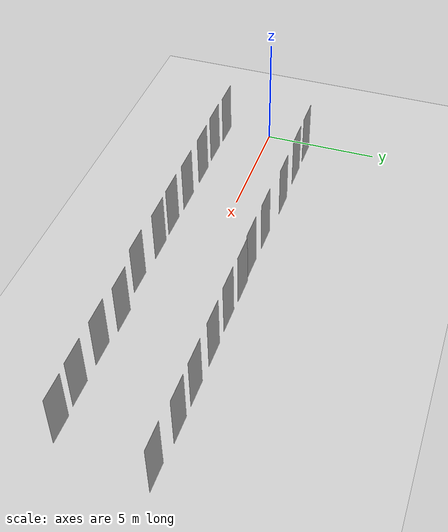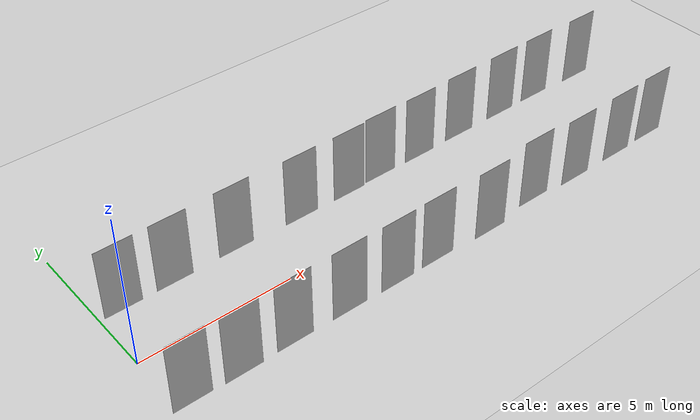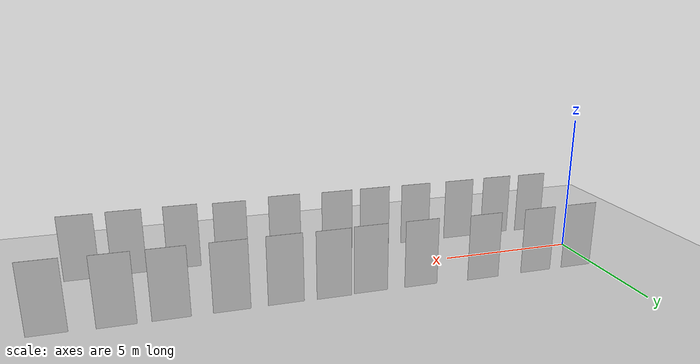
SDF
<sdf version="1.6">
 <world name="default">
  <light name="sun" type="directional">
   <pose>0 0 10 0 -0 0</pose>
   <diffuse>0.8 0.8 0.8 1</diffuse>
   <specular>0.1 0.1 0.1 1</specular>
   <attenuation>
    <range>1000</range>
    <constant>0.9</constant>
    <linear>0.01</linear>
    <quadratic>0.001</quadratic>
   </attenuation>
   <direction>-0.5 0.5 -1</direction>
  </light>
  <model name="ground_plane">
   <static>1</static>
   <link name="link">
    <collision name="collision">
     <geometry><plane><normal>0 0 1</normal><size>100 100</size></plane></geometry>
     <surface><friction><ode><mu>100</mu><mu2>50</mu2></ode></friction></surface>
    </collision>
    <visual name="visual">
     <cast_shadows>0</cast_shadows>
     <geometry><plane><normal>0 0 1</normal><size>100 100</size></plane></geometry>
     <material>
      <script><uri>file://media/materials/scripts/gazebo.material</uri><name>Gazebo/Grey</name></script>
     </material>
    </visual>
   </link>
  </model>
  <gravity>0 0 -9.8</gravity>
  <magnetic_field>6e-06 2.3e-05 -4.2e-05</magnetic_field>
  <atmosphere type="adiabatic"/>
  <physics name="default_physics" default="0" type="ode">
   <max_step_size>0.001</max_step_size>
   <real_time_factor>1</real_time_factor>
   <real_time_update_rate>1000</real_time_update_rate>
  </physics>
  <scene><ambient>0.4 0.4 0.4 1</ambient><background>0.7 0.7 0.7 1</background><shadows>1</shadows></scene>
  <spherical_coordinates>
   <surface_model>EARTH_WGS84</surface_model>
   <latitude_deg>0</latitude_deg>
   <longitude_deg>0</longitude_deg>
   <elevation>0</elevation>
   <heading_deg>0</heading_deg>
  </spherical_coordinates>
  <model name="nist_maze_wall_240">
   <static>1</static>
   <link name="nist__maze_wall_240_link">
    <collision name="collision">
     <geometry>
      <mesh><uri>model://nist_maze_wall_240/meshes/nist_maze_wall_240.dae</uri><scale>1 1 1</scale></mesh>
     </geometry>
    </collision>
    <visual name="visual">
     <geometry>
      <mesh><uri>model://nist_maze_wall_240/meshes/nist_maze_wall_240.dae</uri><scale>1 1 1</scale></mesh>
     </geometry>
    </visual>
   </link>
   <pose>0.434787 -2.60305 0 0 -0 0</pose>
  </model>
  <model name="nist_maze_wall_240_clone">
   <static>1</static>
   <link name="nist__maze_wall_240_link">
    <collision name="collision">
     <geometry>
      <mesh><uri>model://nist_maze_wall_240/meshes/nist_maze_wall_240.dae</uri><scale>1 1 1</scale></mesh>
     </geometry>
    </collision>
    <visual name="visual">
     <geometry>
      <mesh><uri>model://nist_maze_wall_240/meshes/nist_maze_wall_240.dae</uri><scale>1 1 1</scale></mesh>
     </geometry>
    </visual>
   </link>
   <pose>1.99641 -2.64184 0 0 -0 0</pose>
  </model>
  <model name="nist_maze_wall_240_clone_0">
   <static>1</static>
   <link name="nist__maze_wall_240_link">
    <collision name="collision">
     <geometry>
      <mesh><uri>model://nist_maze_wall_240/meshes/nist_maze_wall_240.dae</uri><scale>1 1 1</scale></mesh>
     </geometry>
    </collision>
    <visual name="visual">
     <geometry>
      <mesh><uri>model://nist_maze_wall_240/meshes/nist_maze_wall_240.dae</uri><scale>1 1 1</scale></mesh>
     </geometry>
    </visual>
   </link>
   <pose>3.67232 -2.61551 0 0 -0 0</pose>
  </model>
  <model name="nist_maze_wall_240_clone_1">
   <static>1</static>
   <link name="nist__maze_wall_240_link">
    <collision name="collision">
     <geometry>
      <mesh><uri>model://nist_maze_wall_240/meshes/nist_maze_wall_240.dae</uri><scale>1 1 1</scale></mesh>
     </geometry>
    </collision>
    <visual name="visual">
     <geometry>
      <mesh><uri>model://nist_maze_wall_240/meshes/nist_maze_wall_240.dae</uri><scale>1 1 1</scale></mesh>
     </geometry>
    </visual>
   </link>
   <pose>5.53733 -2.63248 0 0 -0 0</pose>
  </model>
  <model name="nist_maze_wall_240_clone_2">
   <static>1</static>
   <link name="nist__maze_wall_240_link">
    <collision name="collision">
     <geometry>
      <mesh><uri>model://nist_maze_wall_240/meshes/nist_maze_wall_240.dae</uri><scale>1 1 1</scale></mesh>
     </geometry>
    </collision>
    <visual name="visual">
     <geometry>
      <mesh><uri>model://nist_maze_wall_240/meshes/nist_maze_wall_240.dae</uri><scale>1 1 1</scale></mesh>
     </geometry>
    </visual>
   </link>
   <pose>7.24044 -2.66176 0 0 -0 0</pose>
  </model>
  <model name="nist_maze_wall_240_clone_3">
   <static>1</static>
   <link name="nist__maze_wall_240_link">
    <collision name="collision">
     <geometry>
      <mesh><uri>model://nist_maze_wall_240/meshes/nist_maze_wall_240.dae</uri><scale>1 1 1</scale></mesh>
     </geometry>
    </collision>
    <visual name="visual">
     <geometry>
      <mesh><uri>model://nist_maze_wall_240/meshes/nist_maze_wall_240.dae</uri><scale>1 1 1</scale></mesh>
     </geometry>
    </visual>
   </link>
   <pose>8.76998 -2.64909 0 0 -0 0</pose>
  </model>
  <model name="nist_maze_wall_240_clone_4">
   <static>1</static>
   <link name="nist__maze_wall_240_link">
    <collision name="collision">
     <geometry>
      <mesh><uri>model://nist_maze_wall_240/meshes/nist_maze_wall_240.dae</uri><scale>1 1 1</scale></mesh>
     </geometry>
    </collision>
    <visual name="visual">
     <geometry>
      <mesh><uri>model://nist_maze_wall_240/meshes/nist_maze_wall_240.dae</uri><scale>1 1 1</scale></mesh>
     </geometry>
    </visual>
   </link>
   <pose>10.7979 -2.72484 0 0 -0 0</pose>
  </model>
  <model name="nist_maze_wall_240_clone_5">
   <static>1</static>
   <link name="nist__maze_wall_240_link">
    <collision name="collision">
     <geometry>
      <mesh><uri>model://nist_maze_wall_240/meshes/nist_maze_wall_240.dae</uri><scale>1 1 1</scale></mesh>
     </geometry>
    </collision>
    <visual name="visual">
     <geometry>
      <mesh><uri>model://nist_maze_wall_240/meshes/nist_maze_wall_240.dae</uri><scale>1 1 1</scale></mesh>
     </geometry>
    </visual>
   </link>
   <pose>12.864 -2.51583 0 0 -0 0</pose>
  </model>
  <model name="nist_maze_wall_240_clone_6">
   <static>1</static>
   <link name="nist__maze_wall_240_link">
    <collision name="collision">
     <geometry>
      <mesh><uri>model://nist_maze_wall_240/meshes/nist_maze_wall_240.dae</uri><scale>1 1 1</scale></mesh>
     </geometry>
    </collision>
    <visual name="visual">
     <geometry>
      <mesh><uri>model://nist_maze_wall_240/meshes/nist_maze_wall_240.dae</uri><scale>1 1 1</scale></mesh>
     </geometry>
    </visual>
   </link>
   <pose>14.6032 -2.63067 0 0 -0 0</pose>
  </model>
  <model name="nist_maze_wall_240_clone_7">
   <static>1</static>
   <link name="nist__maze_wall_240_link">
    <collision name="collision">
     <geometry>
      <mesh><uri>model://nist_maze_wall_240/meshes/nist_maze_wall_240.dae</uri><scale>1 1 1</scale></mesh>
     </geometry>
    </collision>
    <visual name="visual">
     <geometry>
      <mesh><uri>model://nist_maze_wall_240/meshes/nist_maze_wall_240.dae</uri><scale>1 1 1</scale></mesh>
     </geometry>
    </visual>
   </link>
   <pose>16.5364 -2.62728 0 0 -0 0</pose>
  </model>
  <model name="nist_maze_wall_240_clone_8">
   <static>1</static>
   <link name="nist__maze_wall_240_link">
    <collision name="collision">
     <geometry>
      <mesh><uri>model://nist_maze_wall_240/meshes/nist_maze_wall_240.dae</uri><scale>1 1 1</scale></mesh>
     </geometry>
    </collision>
    <visual name="visual">
     <geometry>
      <mesh><uri>model://nist_maze_wall_240/meshes/nist_maze_wall_240.dae</uri><scale>1 1 1</scale></mesh>
     </geometry>
    </visual>
   </link>
   <pose>18.1412 -2.58883 0 0 -0 0</pose>
  </model>
  <model name="nist_maze_wall_240_clone_9">
   <static>1</static>
   <link name="nist__maze_wall_240_link">
    <collision name="collision">
     <geometry>
      <mesh><uri>model://nist_maze_wall_240/meshes/nist_maze_wall_240.dae</uri><scale>1 1 1</scale></mesh>
     </geometry>
    </collision>
    <visual name="visual">
     <geometry>
      <mesh><uri>model://nist_maze_wall_240/meshes/nist_maze_wall_240.dae</uri><scale>1 1 1</scale></mesh>
     </geometry>
    </visual>
   </link>
   <pose>0.765976 1.377 0 0 -0 0</pose>
  </model>
  <model name="nist_maze_wall_240_clone_10">
   <static>1</static>
   <link name="nist__maze_wall_240_link">
    <collision name="collision">
     <geometry>
      <mesh><uri>model://nist_maze_wall_240/meshes/nist_maze_wall_240.dae</uri><scale>1 1 1</scale></mesh>
     </geometry>
    </collision>
    <visual name="visual">
     <geometry>
      <mesh><uri>model://nist_maze_wall_240/meshes/nist_maze_wall_240.dae</uri><scale>1 1 1</scale></mesh>
     </geometry>
    </visual>
   </link>
   <pose>2.43332 1.37696 0 0 -0 0</pose>
  </model>
  <model name="nist_maze_wall_240_clone_11">
   <static>1</static>
   <link name="nist__maze_wall_240_link">
    <collision name="collision">
     <geometry>
      <mesh><uri>model://nist_maze_wall_240/meshes/nist_maze_wall_240.dae</uri><scale>1 1 1</scale></mesh>
     </geometry>
    </collision>
    <visual name="visual">
     <geometry>
      <mesh><uri>model://nist_maze_wall_240/meshes/nist_maze_wall_240.dae</uri><scale>1 1 1</scale></mesh>
     </geometry>
    </visual>
   </link>
   <pose>4.55106 1.40546 0 0 -0 0</pose>
  </model>
  <model name="nist_maze_wall_240_clone_12">
   <static>1</static>
   <link name="nist__maze_wall_240_link">
    <collision name="collision">
     <geometry>
      <mesh><uri>model://nist_maze_wall_240/meshes/nist_maze_wall_240.dae</uri><scale>1 1 1</scale></mesh>
     </geometry>
    </collision>
    <visual name="visual">
     <geometry>
      <mesh><uri>model://nist_maze_wall_240/meshes/nist_maze_wall_240.dae</uri><scale>1 1 1</scale></mesh>
     </geometry>
    </visual>
   </link>
   <pose>6.87791 1.32144 0 0 -0 0</pose>
  </model>
  <model name="nist_maze_wall_240_clone_13">
   <static>1</static>
   <link name="nist__maze_wall_240_link">
    <collision name="collision">
     <geometry>
      <mesh><uri>model://nist_maze_wall_240/meshes/nist_maze_wall_240.dae</uri><scale>1 1 1</scale></mesh>
     </geometry>
    </collision>
    <visual name="visual">
     <geometry>
      <mesh><uri>model://nist_maze_wall_240/meshes/nist_maze_wall_240.dae</uri><scale>1 1 1</scale></mesh>
     </geometry>
    </visual>
   </link>
   <pose>8.69281 1.29542 0 0 -0 0</pose>
  </model>
  <model name="nist_maze_wall_240_clone_14">
   <static>1</static>
   <link name="nist__maze_wall_240_link">
    <collision name="collision">
     <geometry>
      <mesh><uri>model://nist_maze_wall_240/meshes/nist_maze_wall_240.dae</uri><scale>1 1 1</scale></mesh>
     </geometry>
    </collision>
    <visual name="visual">
     <geometry>
      <mesh><uri>model://nist_maze_wall_240/meshes/nist_maze_wall_240.dae</uri><scale>1 1 1</scale></mesh>
     </geometry>
    </visual>
   </link>
   <pose>9.98625 1.35013 0 0 -0 0</pose>
  </model>
  <model name="nist_maze_wall_240_clone_15">
   <static>1</static>
   <link name="nist__maze_wall_240_link">
    <collision name="collision">
     <geometry>
      <mesh><uri>model://nist_maze_wall_240/meshes/nist_maze_wall_240.dae</uri><scale>1 1 1</scale></mesh>
     </geometry>
    </collision>
    <visual name="visual">
     <geometry>
      <mesh><uri>model://nist_maze_wall_240/meshes/nist_maze_wall_240.dae</uri><scale>1 1 1</scale></mesh>
     </geometry>
    </visual>
   </link>
   <pose>11.6071 1.32442 0 0 -0 0</pose>
  </model>
  <model name="nist_maze_wall_240_clone_16">
   <static>1</static>
   <link name="nist__maze_wall_240_link">
    <collision name="collision">
     <geometry>
      <mesh><uri>model://nist_maze_wall_240/meshes/nist_maze_wall_240.dae</uri><scale>1 1 1</scale></mesh>
     </geometry>
    </collision>
    <visual name="visual">
     <geometry>
      <mesh><uri>model://nist_maze_wall_240/meshes/nist_maze_wall_240.dae</uri><scale>1 1 1</scale></mesh>
     </geometry>
    </visual>
   </link>
   <pose>13.3709 1.35116 0 0 -0 0</pose>
  </model>
  <model name="nist_maze_wall_240_clone_17">
   <static>1</static>
   <link name="nist__maze_wall_240_link">
    <collision name="collision">
     <geometry>
      <mesh><uri>model://nist_maze_wall_240/meshes/nist_maze_wall_240.dae</uri><scale>1 1 1</scale></mesh>
     </geometry>
    </collision>
    <visual name="visual">
     <geometry>
      <mesh><uri>model://nist_maze_wall_240/meshes/nist_maze_wall_240.dae</uri><scale>1 1 1</scale></mesh>
     </geometry>
    </visual>
   </link>
   <pose>15.252 1.35178 0 0 -0 0</pose>
  </model>
  <model name="nist_maze_wall_240_clone_18">
   <static>1</static>
   <link name="nist__maze_wall_240_link">
    <collision name="collision">
     <geometry>
      <mesh><uri>model://nist_maze_wall_240/meshes/nist_maze_wall_240.dae</uri><scale>1 1 1</scale></mesh>
     </geometry>
    </collision>
    <visual name="visual">
     <geometry>
      <mesh><uri>model://nist_maze_wall_240/meshes/nist_maze_wall_240.dae</uri><scale>1 1 1</scale></mesh>
     </geometry>
    </visual>
   </link>
   <pose>16.8843 1.35226 0 0 -0 0</pose>
  </model>
  <model name="nist_maze_wall_240_clone_19">
   <static>1</static>
   <link name="nist__maze_wall_240_link">
    <collision name="collision">
     <geometry>
      <mesh><uri>model://nist_maze_wall_240/meshes/nist_maze_wall_240.dae</uri><scale>1 1 1</scale></mesh>
     </geometry>
    </collision>
    <visual name="visual">
     <geometry>
      <mesh><uri>model://nist_maze_wall_240/meshes/nist_maze_wall_240.dae</uri><scale>1 1 1</scale></mesh>
     </geometry>
    </visual>
   </link>
   <pose>18.8799 1.28154 0 0 -0 0</pose>
  </model>
 </world>
</sdf>
